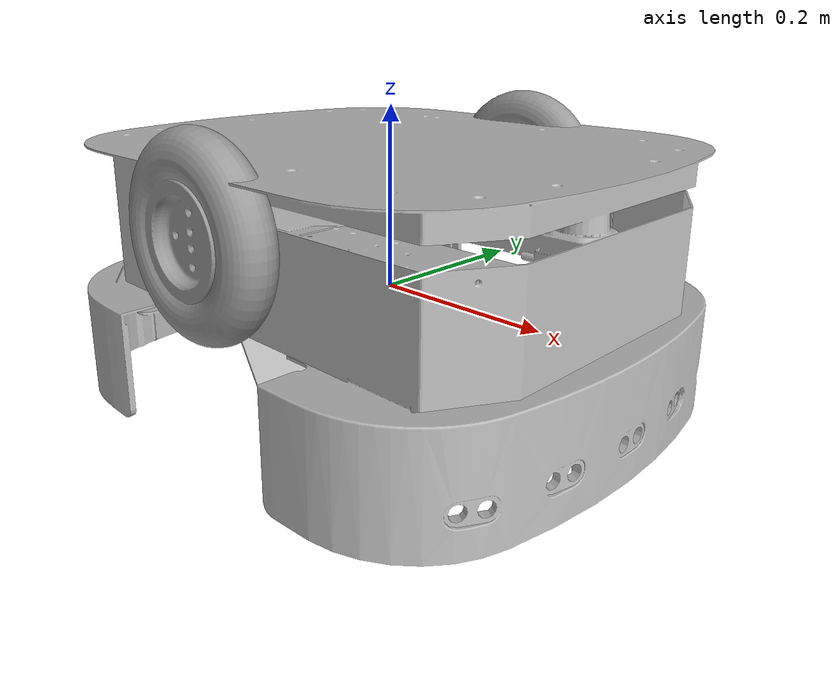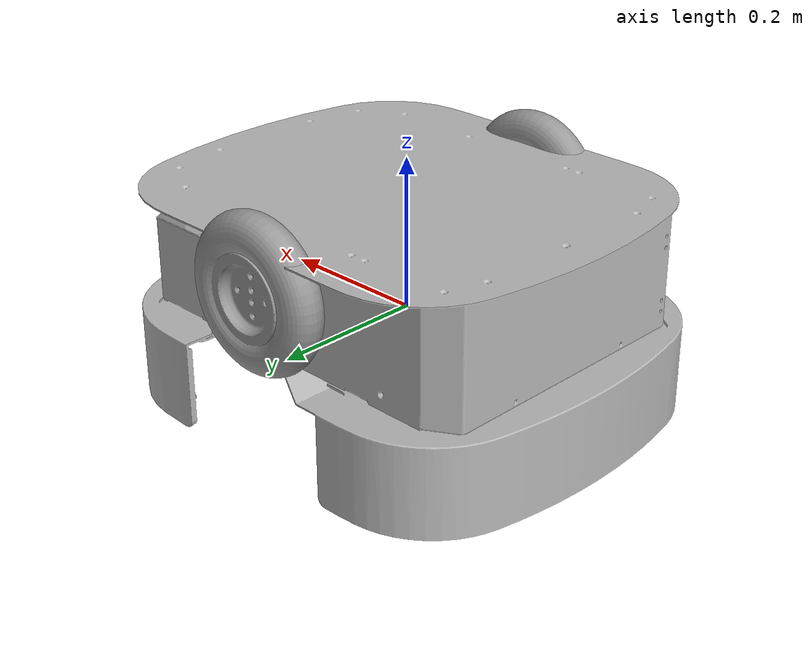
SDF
<?xml version='1.0'?>
    <sdf version='1.4'>
      <model name="mrp2">
      <static>false</static>
      <link name='chassis'>
          <pose>0 0 0 0 0 0</pose>
          <inertial>
            <pose>0.01173 0.00025945 0.17611 0 -0 0</pose>
            <mass>18.68574</mass>
            <inertia>
              <ixx>0.46880</ixx>
              <ixy>-0.05230</ixy>
              <ixz>-0.00522</ixz>
              <iyy>0.82975</iyy>
              <iyz>0.00253</iyz>
              <izz>0.61354</izz>
            </inertia>
          </inertial>

          <collision name='collision'>
            <pose>0 0 0 0 0 0</pose>
            <geometry>
              <mesh>
                <scale>1 1 1</scale>
                <uri>model://mrp2/meshes/base_link.stl</uri>
              </mesh>
            </geometry>
            <surface>
              <friction>
                <ode>
                  <mu>0</mu>
                  <mu2>0</mu2>
                  <slip1>1</slip1>
                  <slip2>1</slip2>
                </ode>
              </friction>
            </surface>
          </collision>

          <visual name='visual'>
            <geometry>
              <mesh>
                <scale>1 1 1</scale>
                <uri>model://mrp2/meshes/base_link.stl</uri>
              </mesh>
            </geometry>
          </visual>

        <collision name='caster_fr_collision'>
          <pose>0.1825 0.14 0.035 0 0 0</pose>
          <geometry>
              <sphere>
              <radius>.0375</radius>
            </sphere>
          </geometry>

          <surface>
            <friction>
              <ode>
                <mu>0.1</mu>
                <mu2>0.1</mu2>
                <slip1>0.8</slip1>
                <slip2>0.6</slip2>
              </ode>
            </friction>
          </surface>
        </collision>

        <collision name='caster_fl_collision'>
          <pose>0.1825 -0.14 0.035 0 0 0</pose>
          <geometry>
              <sphere>
              <radius>.0375</radius>
            </sphere>
          </geometry>

          <surface>
            <friction>
              <ode>
                <mu>0.1</mu>
                <mu2>0.1</mu2>
                <slip1>0.8</slip1>
                <slip2>0.6</slip2>
              </ode>
            </friction>
          </surface>
        </collision>

        <collision name='caster_rl_collision'>
          <pose>-0.1825 -0.14 0.035 0 0 0</pose>
          <geometry>
              <sphere>
              <radius>.0375</radius>
            </sphere>
          </geometry>

          <surface>
            <friction>
              <ode>
                <mu>0.1</mu>
                <mu2>0.1</mu2>
                <slip1>0.8</slip1>
                <slip2>0.6</slip2>
              </ode>
            </friction>
          </surface>
        </collision>

        <collision name='caster_rr_collision'>
          <pose>-0.1825 0.14 0.035 0 0 0</pose>
          <geometry>
              <sphere>
              <radius>.0375</radius>
            </sphere>
          </geometry>

          <surface>
            <friction>
              <ode>
                <mu>0.1</mu>
                <mu2>0.1</mu2>
                <slip1>0.8</slip1>
                <slip2>0.6</slip2>
              </ode>
            </friction>
          </surface>
        </collision>

      </link>

      <link name="left_wheel">
        <pose>0 0.239 0.09995 0 1.5707 0</pose>
        <collision name="collision">
          <pose>0 0.01 0 0 1.5707 1.5707</pose>
          <geometry>
            <cylinder>
              <radius>.104</radius>
              <length>.05</length>
            </cylinder>
          </geometry>
        </collision>
        <visual name="visual">
          <geometry>
            <mesh>
              <scale>1 1 1</scale>
              <uri>model://mrp2/meshes/left_wheel.stl</uri>
            </mesh>
          </geometry>
          <material>
            <script>
              <name>Gazebo/Grey</name>
            </script>
          </material>
        </visual>
      </link>

      <link name="right_wheel">
        <pose>0 -0.239 0.09995 0 1.5707 3.1415</pose>
        <collision name="collision">
          <pose>0 0.01 0 0 1.5707 1.5707</pose>
          <geometry>
            <cylinder>
              <radius>.104</radius>
              <length>.05</length>
            </cylinder>
          </geometry>
        </collision>
        <visual name="visual">
          <geometry>
            <mesh>
              <scale>1 1 1</scale>
              <uri>model://mrp2/meshes/left_wheel.stl</uri>
            </mesh>
          </geometry>
          <material>
            <script>
              <name>Gazebo/Grey</name>
            </script>
          </material>
        </visual>
      </link>
      <joint type="revolute" name="left_wheel_hinge">
        <pose>0 0 0 0 0 0</pose>
        <child>left_wheel</child>
        <parent>chassis</parent>
        <axis>
          <xyz>0 1 0</xyz>
        </axis>
      </joint>

      <joint type="revolute" name="right_wheel_hinge">
        <pose>0 0 0 0 0 0</pose>
        <child>right_wheel</child>
        <parent>chassis</parent>
        <axis>
          <xyz>0 1 0</xyz>
        </axis>
      </joint>
    </model>
  </sdf>
